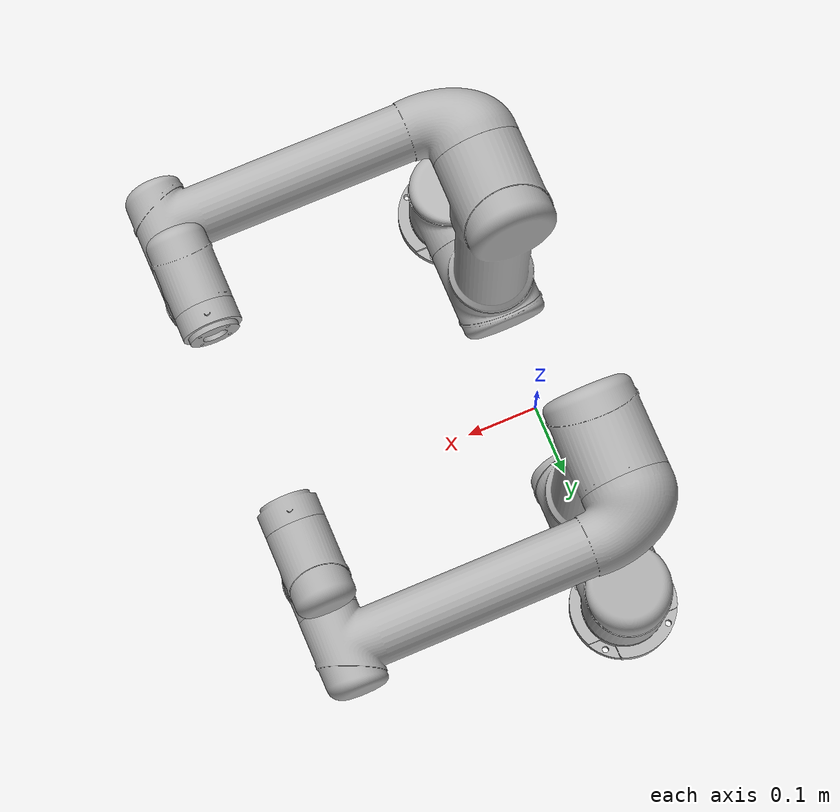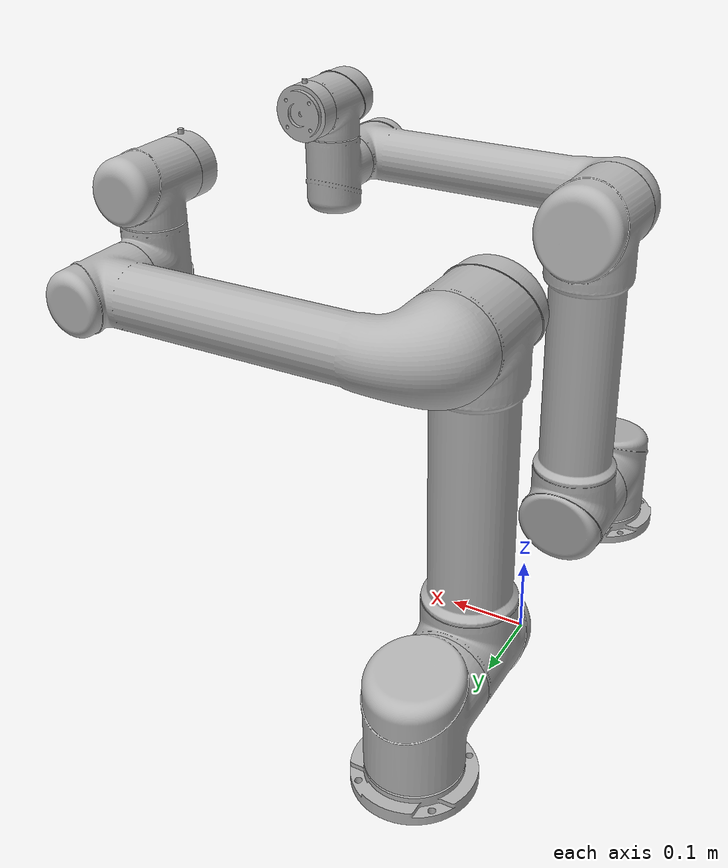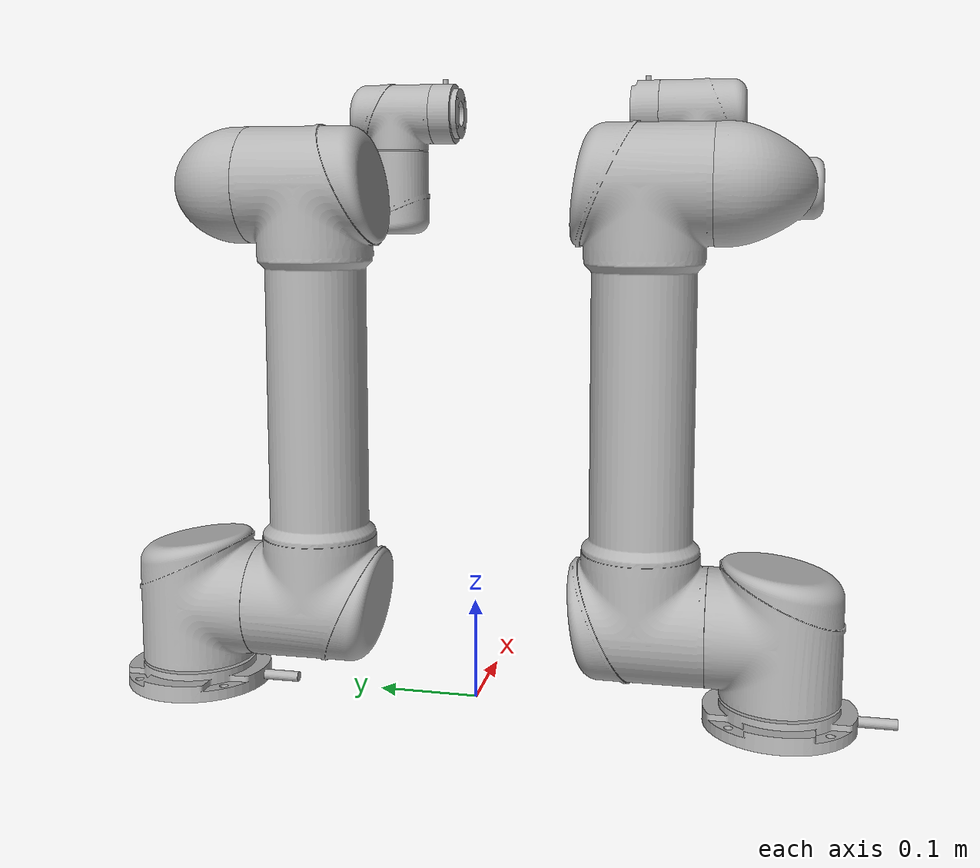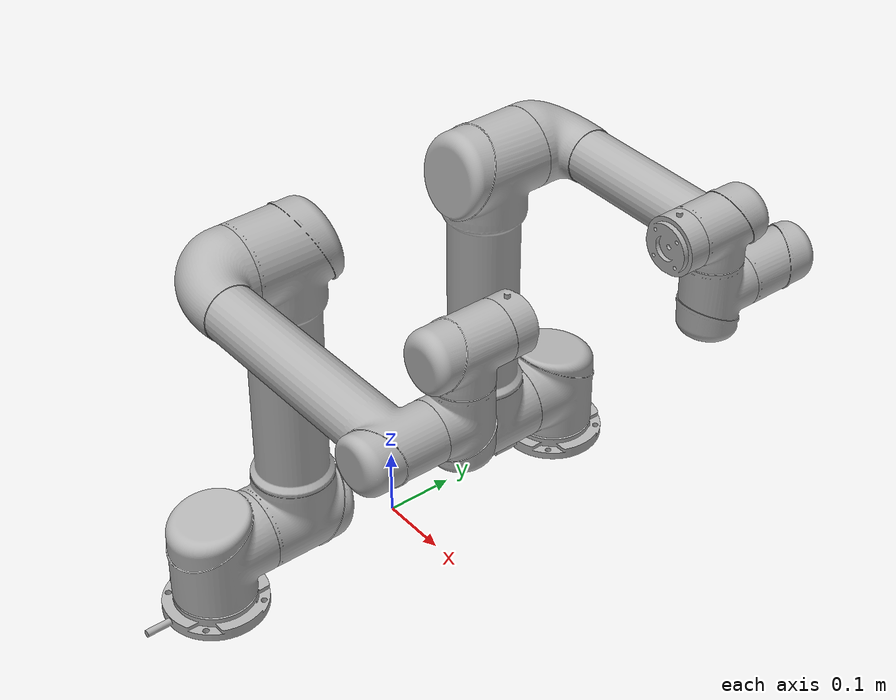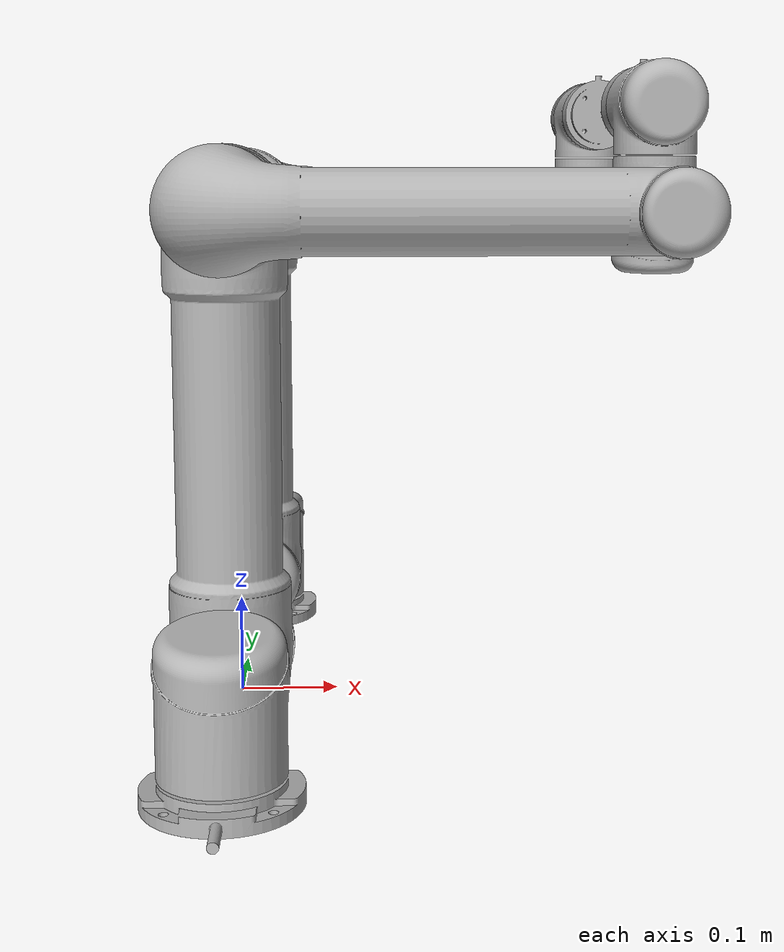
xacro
<?xml version="1.0"?>
<robot xmlns:xacro="http://www.ros.org/wiki/xacro"
       name="ur5" >

  <!-- common stuff -->
  <xacro:include filename="$(find ur5_description)/urdf/common.gazebo.xacro" />

  <!-- ur5 -->
  <xacro:include filename="$(find ur5_description)/urdf/ur5.urdf.xacro" />

  <!-- arm -->
  <xacro:ur5_robot prefix="" joint_limited="true"/>

  <link name="world" />

  <joint name="world_joint_r" type="fixed">
    <parent link="world" />
    <child link = "base_link_r" />
    <origin xyz="0.0 -0.3 0.0" rpy="0.0 0.0 0.0" />
  </joint>

  <joint name="world_joint_l" type="fixed">
    <parent link="world" />
    <child link = "base_link_l" />
    <origin xyz="0.0 0.3 0.0" rpy="0.0 0.0 0.0" />
  </joint>

</robot>

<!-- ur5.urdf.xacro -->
<robot xmlns:xacro="http://www.ros.org/wiki/xacro">

  <xacro:include filename="$(find ur5_description)/urdf/ur5.transmission.xacro" />
  <xacro:include filename="$(find ur5_description)/urdf/ur.gazebo.xacro" />

  <!-- Inertia parameters -->
  <xacro:property name="base_mass" value="4.0" />  <!-- This mass might be incorrect -->
  <xacro:property name="shoulder_mass" value="3.7000" />
  <xacro:property name="upper_arm_mass" value="8.3930" />
  <xacro:property name="forearm_mass" value="2.2750" />
  <xacro:property name="wrist_1_mass" value="1.2190" />
  <xacro:property name="wrist_2_mass" value="1.2190" />
  <xacro:property name="wrist_3_mass" value="0.1879" />
  <xacro:property name="obj_mass" value="0.5" />

  <xacro:property name="shoulder_cog" value="0.0 0.00193 -0.02561" />
  <xacro:property name="upper_arm_cog" value="0.0 -0.024201 0.2125" />
  <xacro:property name="forearm_cog" value="0.0 0.0265 0.11993" />
  <xacro:property name="wrist_1_cog" value="0.0 0.110949 0.01634" />
  <xacro:property name="wrist_2_cog" value="0.0 0.0018 0.11099" />
  <xacro:property name="wrist_3_cog" value="0.0 0.001159 0.0" />

  <!-- Kinematic model -->
  <!-- Properties from urcontrol.conf -->
  <xacro:property name="ur5_d1" value="0.089159" />
  <xacro:property name="ur5_a2" value="-0.42500" />
  <xacro:property name="ur5_a3" value="-0.39225" />
  <xacro:property name="ur5_d4" value="0.10915" />
  <xacro:property name="ur5_d5" value="0.09465" />
  <xacro:property name="ur5_d6" value="0.0823" />

  <!-- Arbitrary offsets for shoulder/elbow joints -->
  <xacro:property name="shoulder_offset" value="0.13585" />  <!-- measured from model -->
  <xacro:property name="elbow_offset" value="-0.1197" /> <!-- measured from model -->

  <!-- link lengths used in model -->
  <xacro:property name="shoulder_height" value="${ur5_d1}" />
  <xacro:property name="upper_arm_length" value="${-ur5_a2}" />
  <xacro:property name="forearm_length" value="${-ur5_a3}" />
  <xacro:property name="wrist_1_length" value="${ur5_d4 - elbow_offset - shoulder_offset}" />
  <xacro:property name="wrist_2_length" value="${ur5_d5}" />
  <xacro:property name="wrist_3_length" value="${ur5_d6}" />
  <xacro:property name="obj_length" value="0.2" />
  <!--property name="shoulder_height" value="0.089159" /-->
  <!--property name="shoulder_offset" value="0.13585" /-->  <!-- shoulder_offset - elbow_offset + wrist_1_length = 0.10915 -->
  <!--property name="upper_arm_length" value="0.42500" /-->
  <!--property name="elbow_offset" value="0.1197" /-->       <!-- CAD measured -->
  <!--property name="forearm_length" value="0.39225" /-->
  <!--property name="wrist_1_length" value="0.093" /-->     <!-- CAD measured -->
  <!--property name="wrist_2_length" value="0.09465" /-->   <!-- In CAD this distance is 0.930, but in the spec it is 0.09465 -->
  <!--property name="wrist_3_length" value="0.0823" /-->

  <xacro:property name="shoulder_radius" value="0.060" />   <!-- manually measured -->
  <xacro:property name="upper_arm_radius" value="0.054" />  <!-- manually measured -->
  <xacro:property name="elbow_radius" value="0.060" />      <!-- manually measured -->
  <xacro:property name="forearm_radius" value="0.040" />    <!-- manually measured -->
  <xacro:property name="wrist_radius" value="0.045" />      <!-- manually measured -->

  <xacro:macro name="cylinder_inertial" params="radius length mass *origin">
    <inertial>
      <mass value="${mass}" />
      <xacro:insert_block name="origin" />
      <inertia ixx="${0.0833333 * mass * (3 * radius * radius + length * length)}" ixy="0.0" ixz="0.0"
        iyy="${0.0833333 * mass * (3 * radius * radius + length * length)}" iyz="0.0"
        izz="${0.5 * mass * radius * radius}" />
    </inertial>
  </xacro:macro>

  <xacro:macro name="ur5_robot" params="prefix joint_limited">

    <link name="${prefix}base_link_r" >
      <visual>
        <geometry>
          <mesh filename="package://ur5_description/meshes/ur5/visual/base.dae" />
        </geometry>
        <material name="LightGrey">
          <color rgba="0.7 0.7 0.7 1.0"/>
        </material>
      </visual>
      <collision>
        <geometry>
          <mesh filename="package://ur5_description/meshes/ur5/collision/base.stl" />
        </geometry>
      </collision>
      <xacro:cylinder_inertial radius="0.06" length="0.05" mass="${base_mass}">
        <origin xyz="0.0 0.0 0.0" rpy="0 0 0" />
      </xacro:cylinder_inertial>
    </link>

    <joint name="${prefix}shoulder_pan_joint_r" type="revolute">
      <parent link="${prefix}base_link_r" />
      <child link = "${prefix}shoulder_link_r" />
      <origin xyz="0.0 0.0 ${shoulder_height}" rpy="0.0 0.0 0.0" />
      <axis xyz="0 0 1" />
      <xacro:unless value="${joint_limited}">
        <limit lower="${-2.0 * pi}" upper="${2.0 * pi}" effort="150.0" velocity="3.15"/>
      </xacro:unless>
      <xacro:if value="${joint_limited}">
        <limit lower="${-pi}" upper="${pi}" effort="150.0" velocity="3.15"/>
      </xacro:if>
      <dynamics damping="0.0" friction="0.0"/>
    </joint>

    <link name="${prefix}shoulder_link_r">
      <visual>
        <geometry>
          <mesh filename="package://ur5_description/meshes/ur5/visual/shoulder.dae" />
        </geometry>
        <material name="LightGrey">
          <color rgba="0.7 0.7 0.7 1.0"/>
        </material>
      </visual>
      <collision>
        <geometry>
          <mesh filename="package://ur5_description/meshes/ur5/collision/shoulder.stl" />
        </geometry>
      </collision>
      <xacro:cylinder_inertial radius="0.06" length="0.15" mass="${shoulder_mass}">
        <origin xyz="0.0 0.0 0.0" rpy="0 0 0" />
      </xacro:cylinder_inertial>
    </link>

    <joint name="${prefix}shoulder_lift_joint_r" type="revolute">
      <parent link="${prefix}shoulder_link_r" />
      <child link = "${prefix}upper_arm_link_r" />
      <origin xyz="0.0 ${shoulder_offset} 0.0" rpy="0.0 0.0 0.0" />
      <axis xyz="0 1 0" />
      <xacro:unless value="${joint_limited}">
        <limit lower="${-2.0 * pi}" upper="${2.0 * pi}" effort="150.0" velocity="3.15"/>
      </xacro:unless>
      <xacro:if value="${joint_limited}">
        <limit lower="${-pi}" upper="${pi}" effort="150.0" velocity="3.15"/>
      </xacro:if>
      <dynamics damping="0.0" friction="0.0"/>
    </joint>

    <link name="${prefix}upper_arm_link_r">
      <visual>
        <geometry>
          <mesh filename="package://ur5_description/meshes/ur5/visual/upperarm.dae" />
        </geometry>
        <material name="LightGrey">
          <color rgba="0.7 0.7 0.7 1.0"/>
        </material>
      </visual>
      <collision>
        <geometry>
          <mesh filename="package://ur5_description/meshes/ur5/collision/upperarm.stl" />
        </geometry>
      </collision>
      <xacro:cylinder_inertial radius="0.06" length="0.56" mass="${upper_arm_mass}">
        <origin xyz="0.0 0.0 0.28" rpy="0 0 0" />
      </xacro:cylinder_inertial>
    </link>

    <joint name="${prefix}elbow_joint_r" type="revolute">
      <parent link="${prefix}upper_arm_link_r" />
      <child link = "${prefix}forearm_link_r" />
      <origin xyz="0.0 ${elbow_offset} ${upper_arm_length}" rpy="0.0 ${pi / 2.0} 0.0" />
      <axis xyz="0 1 0" />
      <xacro:unless value="${joint_limited}">
        <limit lower="${-pi}" upper="${pi}" effort="150.0" velocity="3.15"/>
      </xacro:unless>
      <xacro:if value="${joint_limited}">
        <limit lower="${-pi}" upper="${pi}" effort="150.0" velocity="3.15"/>
      </xacro:if>
      <dynamics damping="0.0" friction="0.0"/>
    </joint>

    <link name="${prefix}forearm_link_r">
      <visual>
        <geometry>
          <mesh filename="package://ur5_description/meshes/ur5/visual/forearm.dae" />
        </geometry>
        <material name="LightGrey">
          <color rgba="0.7 0.7 0.7 1.0"/>
        </material>
      </visual>
      <collision>
        <geometry>
          <mesh filename="package://ur5_description/meshes/ur5/collision/forearm.stl" />
        </geometry>
      </collision>
      <xacro:cylinder_inertial radius="0.06" length="0.5" mass="${forearm_mass}">
        <origin xyz="0.0 0.0 0.25" rpy="0 0 0" />
      </xacro:cylinder_inertial>
    </link>

    <joint name="${prefix}wrist_1_joint_r" type="revolute">
      <parent link="${prefix}forearm_link_r" />
      <child link = "${prefix}wrist_1_link_r" />
      <origin xyz="0.0 0.0 ${forearm_length}" rpy="0.0 ${-pi / 2.0} 0.0" />
      <axis xyz="0 1 0" />
      <xacro:unless value="${joint_limited}">
        <limit lower="${-2.0 * pi}" upper="${2.0 * pi}" effort="28.0" velocity="3.2"/>
      </xacro:unless>
      <xacro:if value="${joint_limited}">
        <limit lower="${-pi}" upper="${pi}" effort="28.0" velocity="3.2"/>
      </xacro:if>
      <dynamics damping="0.0" friction="0.0"/>
    </joint>

    <link name="${prefix}wrist_1_link_r">
      <visual>
        <geometry>
          <mesh filename="package://ur5_description/meshes/ur5/visual/wrist1.dae" />
        </geometry>
        <material name="LightGrey">
          <color rgba="0.7 0.7 0.7 1.0"/>
        </material>
      </visual>
      <collision>
        <geometry>
          <mesh filename="package://ur5_description/meshes/ur5/collision/wrist1.stl" />
        </geometry>
      </collision>
      <xacro:cylinder_inertial radius="0.6" length="0.12" mass="${wrist_1_mass}">
        <origin xyz="0.0 0.0 0.0" rpy="0 0 0" />
      </xacro:cylinder_inertial>
    </link>

    <joint name="${prefix}wrist_2_joint_r" type="revolute">
      <parent link="${prefix}wrist_1_link_r" />
      <child link = "${prefix}wrist_2_link_r" />
      <origin xyz="0.0 ${wrist_1_length} 0.0" rpy="0.0 0.0 0.0" />
      <axis xyz="0 0 1" />
      <xacro:unless value="${joint_limited}">
        <limit lower="${-2.0 * pi}" upper="${2.0 * pi}" effort="28.0" velocity="3.2"/>
      </xacro:unless>
      <xacro:if value="${joint_limited}">
        <limit lower="${-pi}" upper="${pi}" effort="28.0" velocity="3.2"/>
      </xacro:if>
      <dynamics damping="0.0" friction="0.0"/>
    </joint>

    <link name="${prefix}wrist_2_link_r">
      <visual>
        <geometry>
          <mesh filename="package://ur5_description/meshes/ur5/visual/wrist2.dae" />
        </geometry>
        <material name="LightGrey">
          <color rgba="0.7 0.7 0.7 1.0"/>
        </material>
      </visual>
      <collision>
        <geometry>
          <mesh filename="package://ur5_description/meshes/ur5/collision/wrist2.stl" />
        </geometry>
      </collision>
      <xacro:cylinder_inertial radius="0.6" length="0.12" mass="${wrist_2_mass}">
        <origin xyz="0.0 0.0 0.0" rpy="0 0 0" />
      </xacro:cylinder_inertial>
    </link>

    <joint name="${prefix}wrist_3_joint_r" type="revolute">
      <parent link="${prefix}wrist_2_link_r" />
      <child link = "${prefix}wrist_3_link_r" />
      <origin xyz="0.0 0.0 ${wrist_2_length}" rpy="0.0 0.0 0.0" />
      <axis xyz="0 1 0" />
      <xacro:unless value="${joint_limited}">
        <limit lower="${-2.0 * pi}" upper="${2.0 * pi}" effort="28.0" velocity="3.2"/>
      </xacro:unless>
      <xacro:if value="${joint_limited}">
        <limit lower="${-pi}" upper="${pi}" effort="28.0" velocity="3.2"/>
      </xacro:if>
      <dynamics damping="0.0" friction="0.0"/>
    </joint>

    <link name="${prefix}wrist_3_link_r">
      <visual>
        <geometry>
          <mesh filename="package://ur5_description/meshes/ur5/visual/wrist3.dae" />
        </geometry>
        <material name="LightGrey">
          <color rgba="0.7 0.7 0.7 1.0"/>
        </material>
      </visual>
      <collision>
        <geometry>
          <mesh filename="package://ur5_description/meshes/ur5/collision/wrist3.stl" />
        </geometry>
      </collision>
      <xacro:cylinder_inertial radius="0.6" length="0.12" mass="${wrist_3_mass}">
        <origin xyz="0.0 0.0 0.0" rpy="0 0 0" />
      </xacro:cylinder_inertial>
    </link>

    <joint name="${prefix}ee_fixed_joint_r" type="fixed">
      <parent link="${prefix}wrist_3_link_r" />
      <child link = "${prefix}ee_link_r" />
      <origin xyz="0.0 ${wrist_3_length} 0.0" rpy="0.0 0.0 ${pi/2.0}" />
    </joint>

    <link name="${prefix}ee_link_r">
      <collision>
        <geometry>
          <box size="0.01 0.01 0.01"/>
        </geometry>
        <origin rpy="0 0 0" xyz="-0.01 0 0"/>
      </collision>
    </link>

    <xacro:ur_arm_transmission prefix="${prefix}" />
    <xacro:ur_arm_gazebo prefix="${prefix}" />

    <!-- ROS base_link to UR 'Base' Coordinates transform -->
    <link name="${prefix}base_r"/>
    <joint name="${prefix}base_link_r-base_fixed_joint" type="fixed">
      <!-- NOTE: this rotation is only needed as long as base_link itself is
                 not corrected wrt the real robot (ie: rotated over 180
                 degrees)
      -->
      <origin xyz="0 0 0" rpy="0 0 ${-pi}"/>
      <parent link="${prefix}base_link_r"/>
      <child link="${prefix}base_r"/>
    </joint>

    <!-- Frame coincident with all-zeros TCP on UR controller -->
    <link name="${prefix}tool0_r"/>
    <joint name="${prefix}wrist_3_link_r-tool0_fixed_joint" type="fixed">
      <origin xyz="0 ${wrist_3_length} 0" rpy="${pi/-2.0} 0 0"/>
      <parent link="${prefix}wrist_3_link_r"/>
      <child link="${prefix}tool0_r"/>
    </joint>

    <link name="${prefix}base_link_l" >
      <visual>
        <geometry>
          <mesh filename="package://ur5_description/meshes/ur5/visual/base.dae" />
        </geometry>
        <material name="LightGrey">
          <color rgba="0.7 0.7 0.7 1.0"/>
        </material>
      </visual>
      <collision>
        <geometry>
          <mesh filename="package://ur5_description/meshes/ur5/collision/base.stl" />
        </geometry>
      </collision>
      <xacro:cylinder_inertial radius="0.06" length="0.05" mass="${base_mass}">
        <origin xyz="0.0 0.0 0.0" rpy="0 0 0" />
      </xacro:cylinder_inertial>
    </link>

    <joint name="${prefix}shoulder_pan_joint_l" type="revolute">
      <parent link="${prefix}base_link_l" />
      <child link = "${prefix}shoulder_link_l" />
      <origin xyz="0.0 0.0 ${shoulder_height}" rpy="0.0 0.0 ${pi}" />
      <axis xyz="0 0 1" />
      <xacro:unless value="${joint_limited}">
        <limit lower="${-2.0 * pi}" upper="${2.0 * pi}" effort="150.0" velocity="3.15"/>
      </xacro:unless>
      <xacro:if value="${joint_limited}">
        <limit lower="${-pi}" upper="${pi}" effort="150.0" velocity="3.15"/>
      </xacro:if>
      <dynamics damping="0.0" friction="0.0"/>
    </joint>

    <link name="${prefix}shoulder_link_l">
      <visual>
        <geometry>
          <mesh filename="package://ur5_description/meshes/ur5/visual/shoulder.dae" />
        </geometry>
        <material name="LightGrey">
          <color rgba="0.7 0.7 0.7 1.0"/>
        </material>
      </visual>
      <collision>
        <geometry>
          <mesh filename="package://ur5_description/meshes/ur5/collision/shoulder.stl" />
        </geometry>
      </collision>
      <xacro:cylinder_inertial radius="0.06" length="0.15" mass="${shoulder_mass}">
        <origin xyz="0.0 0.0 0.0" rpy="0 0 0" />
      </xacro:cylinder_inertial>
    </link>

    <joint name="${prefix}shoulder_lift_joint_l" type="revolute">
      <parent link="${prefix}shoulder_link_l" />
      <child link = "${prefix}upper_arm_link_l" />
      <origin xyz="0.0 ${shoulder_offset} 0.0" rpy="0.0 0.0 0.0" />
      <axis xyz="0 1 0" />
      <xacro:unless value="${joint_limited}">
        <limit lower="${-2.0 * pi}" upper="${2.0 * pi}" effort="150.0" velocity="3.15"/>
      </xacro:unless>
      <xacro:if value="${joint_limited}">
        <limit lower="${-pi}" upper="${pi}" effort="150.0" velocity="3.15"/>
      </xacro:if>
      <dynamics damping="0.0" friction="0.0"/>
    </joint>

    <link name="${prefix}upper_arm_link_l">
      <visual>
        <geometry>
          <mesh filename="package://ur5_description/meshes/ur5/visual/upperarm.dae" />
        </geometry>
        <material name="LightGrey">
          <color rgba="0.7 0.7 0.7 1.0"/>
        </material>
      </visual>
      <collision>
        <geometry>
          <mesh filename="package://ur5_description/meshes/ur5/collision/upperarm.stl" />
        </geometry>
      </collision>
      <xacro:cylinder_inertial radius="0.06" length="0.56" mass="${upper_arm_mass}">
        <origin xyz="0.0 0.0 0.28" rpy="0 0 0" />
      </xacro:cylinder_inertial>
    </link>

    <joint name="${prefix}elbow_joint_l" type="revolute">
      <parent link="${prefix}upper_arm_link_l" />
      <child link = "${prefix}forearm_link_l" />
      <origin xyz="0.0 ${elbow_offset} ${upper_arm_length}" rpy="0.0 ${-pi / 2.0} 0.0" />
      <axis xyz="0 1 0" />
      <xacro:unless value="${joint_limited}">
        <limit lower="${-pi}" upper="${pi}" effort="150.0" velocity="3.15"/>
      </xacro:unless>
      <xacro:if value="${joint_limited}">
        <limit lower="${-pi}" upper="${pi}" effort="150.0" velocity="3.15"/>
      </xacro:if>
      <dynamics damping="0.0" friction="0.0"/>
    </joint>

    <link name="${prefix}forearm_link_l">
      <visual>
        <geometry>
          <mesh filename="package://ur5_description/meshes/ur5/visual/forearm.dae" />
        </geometry>
        <material name="LightGrey">
          <color rgba="0.7 0.7 0.7 1.0"/>
        </material>
      </visual>
      <collision>
        <geometry>
          <mesh filename="package://ur5_description/meshes/ur5/collision/forearm.stl" />
        </geometry>
      </collision>
      <xacro:cylinder_inertial radius="0.06" length="0.5" mass="${forearm_mass}">
        <origin xyz="0.0 0.0 0.25" rpy="0 0 0" />
      </xacro:cylinder_inertial>
    </link>

    <joint name="${prefix}wrist_1_joint_l" type="revolute">
      <parent link="${prefix}forearm_link_l" />
      <child link = "${prefix}wrist_1_link_l" />
      <origin xyz="0.0 0.0 ${forearm_length}" rpy="0.0 ${pi / 2.0} 0.0" />
      <axis xyz="0 1 0" />
      <xacro:unless value="${joint_limited}">
        <limit lower="${-2.0 * pi}" upper="${2.0 * pi}" effort="28.0" velocity="3.2"/>
      </xacro:unless>
      <xacro:if value="${joint_limited}">
        <limit lower="${-pi}" upper="${pi}" effort="28.0" velocity="3.2"/>
      </xacro:if>
      <dynamics damping="0.0" friction="0.0"/>
    </joint>

    <link name="${prefix}wrist_1_link_l">
      <visual>
        <geometry>
          <mesh filename="package://ur5_description/meshes/ur5/visual/wrist1.dae" />
        </geometry>
        <material name="LightGrey">
          <color rgba="0.7 0.7 0.7 1.0"/>
        </material>
      </visual>
      <collision>
        <geometry>
          <mesh filename="package://ur5_description/meshes/ur5/collision/wrist1.stl" />
        </geometry>
      </collision>
      <xacro:cylinder_inertial radius="0.6" length="0.12" mass="${wrist_1_mass}">
        <origin xyz="0.0 0.0 0.0" rpy="0 0 0" />
      </xacro:cylinder_inertial>
    </link>

    <joint name="${prefix}wrist_2_joint_l" type="revolute">
      <parent link="${prefix}wrist_1_link_l" />
      <child link = "${prefix}wrist_2_link_l" />
      <origin xyz="0.0 ${wrist_1_length} 0.0" rpy="0.0 0.0 0.0" />
      <axis xyz="0 0 1" />
      <xacro:unless value="${joint_limited}">
        <limit lower="${-2.0 * pi}" upper="${2.0 * pi}" effort="28.0" velocity="3.2"/>
      </xacro:unless>
      <xacro:if value="${joint_limited}">
        <limit lower="${-pi}" upper="${pi}" effort="28.0" velocity="3.2"/>
      </xacro:if>
      <dynamics damping="0.0" friction="0.0"/>
    </joint>

    <link name="${prefix}wrist_2_link_l">
      <visual>
        <geometry>
          <mesh filename="package://ur5_description/meshes/ur5/visual/wrist2.dae" />
        </geometry>
        <material name="LightGrey">
          <color rgba="0.7 0.7 0.7 1.0"/>
        </material>
      </visual>
      <collision>
        <geometry>
          <mesh filename="package://ur5_description/meshes/ur5/collision/wrist2.stl" />
        </geometry>
      </collision>
      <xacro:cylinder_inertial radius="0.6" length="0.12" mass="${wrist_2_mass}">
        <origin xyz="0.0 0.0 0.0" rpy="0 0 0" />
      </xacro:cylinder_inertial>
    </link>

    <joint name="${prefix}wrist_3_joint_l" type="revolute">
      <parent link="${prefix}wrist_2_link_l" />
      <child link = "${prefix}wrist_3_link_l" />
      <origin xyz="0.0 0.0 ${wrist_2_length}" rpy="0.0 0.0 0.0" />
      <axis xyz="0 1 0" />
      <xacro:unless value="${joint_limited}">
        <limit lower="${-2.0 * pi}" upper="${2.0 * pi}" effort="28.0" velocity="3.2"/>
      </xacro:unless>
      <xacro:if value="${joint_limited}">
        <limit lower="${-pi}" upper="${pi}" effort="28.0" velocity="3.2"/>
      </xacro:if>
      <dynamics damping="0.0" friction="0.0"/>
    </joint>

    <link name="${prefix}wrist_3_link_l">
      <visual>
        <geometry>
          <mesh filename="package://ur5_description/meshes/ur5/visual/wrist3.dae" />
        </geometry>
        <material name="LightGrey">
          <color rgba="0.7 0.7 0.7 1.0"/>
        </material>
      </visual>
      <collision>
        <geometry>
          <mesh filename="package://ur5_description/meshes/ur5/collision/wrist3.stl" />
        </geometry>
      </collision>
      <xacro:cylinder_inertial radius="0.6" length="0.12" mass="${wrist_3_mass}">
        <origin xyz="0.0 0.0 0.0" rpy="0 0 0" />
      </xacro:cylinder_inertial>
    </link>

    <joint name="${prefix}ee_fixed_joint_l" type="fixed">
      <parent link="${prefix}wrist_3_link_l" />
      <child link = "${prefix}ee_link_l" />
      <origin xyz="0.0 ${wrist_3_length} 0.0" rpy="0.0 0.0 ${pi/2.0}" />
    </joint>

    <link name="${prefix}ee_link_l">
      <collision>
        <geometry>
          <box size="0.01 0.01 0.01"/>
        </geometry>
        <origin rpy="0 0 0" xyz="-0.01 0 0"/>
      </collision>
    </link>

    <xacro:ur_arm_transmission prefix="${prefix}" />
    <xacro:ur_arm_gazebo prefix="${prefix}" />

    <!-- ROS base_link to UR 'Base' Coordinates transform -->
    <link name="${prefix}base_l"/>
    <joint name="${prefix}base_link_l-base_fixed_joint" type="fixed">
      <origin xyz="0 0 0" rpy="0 0 ${-pi}"/>
      <parent link="${prefix}base_link_l"/>
      <child link="${prefix}base_l"/>
    </joint>

    <!-- Frame coincident with all-zeros TCP on UR controller -->
    <link name="${prefix}tool0_l"/>
    <joint name="${prefix}wrist_3_link_l-tool0_fixed_joint" type="fixed">
      <origin xyz="0 ${wrist_3_length} 0" rpy="${pi/-2.0} 0 0"/>
      <parent link="${prefix}wrist_3_link_l"/>
      <child link="${prefix}tool0_l"/>
    </joint>

  </xacro:macro>
</robot>
